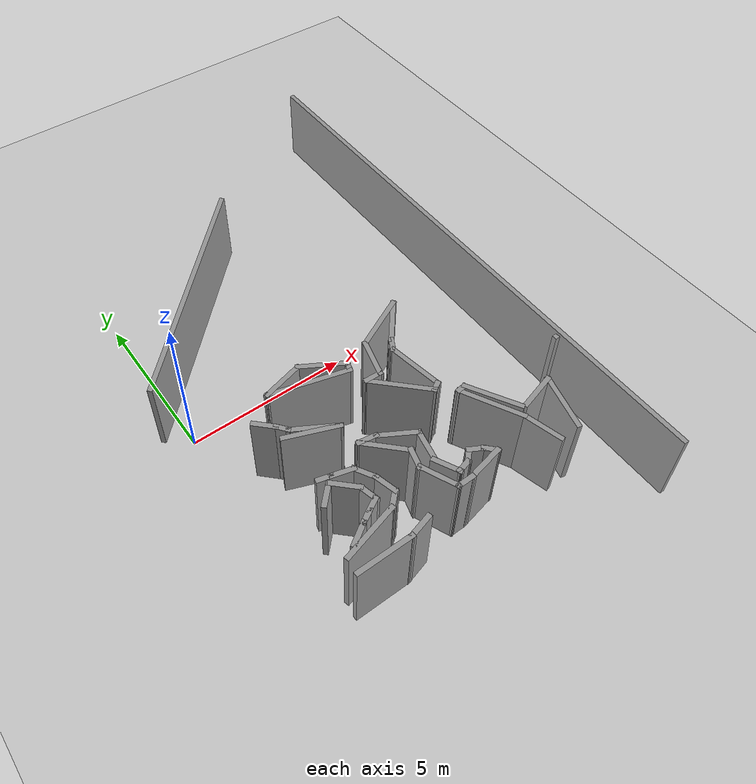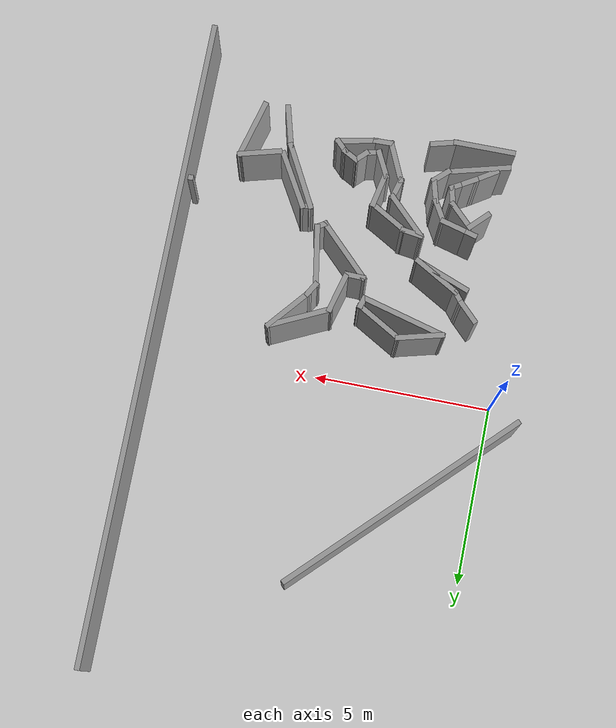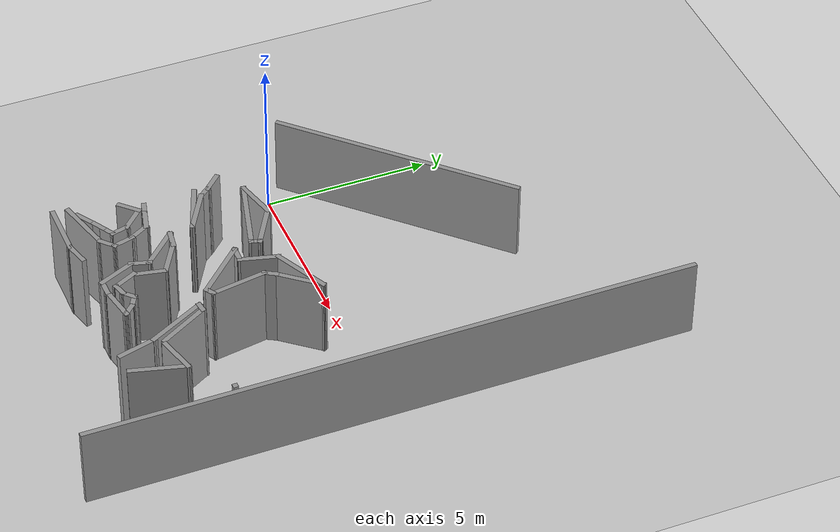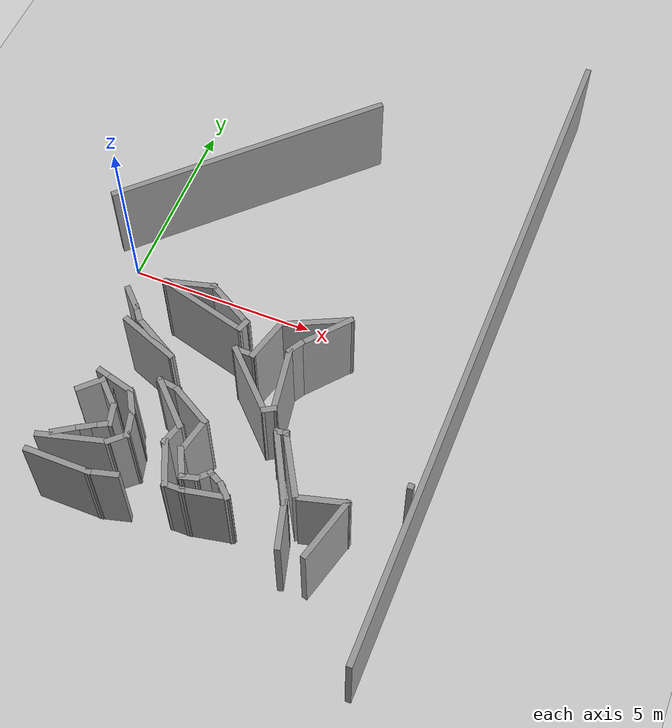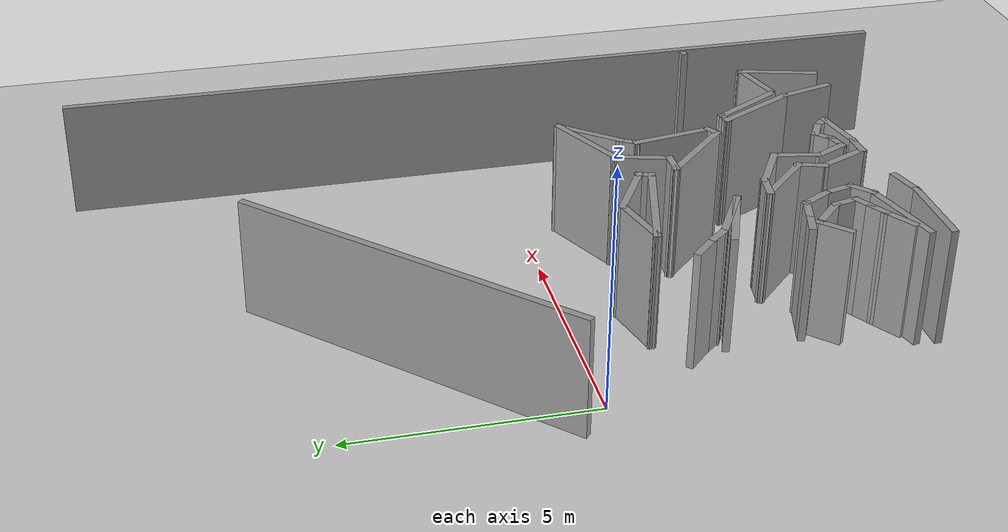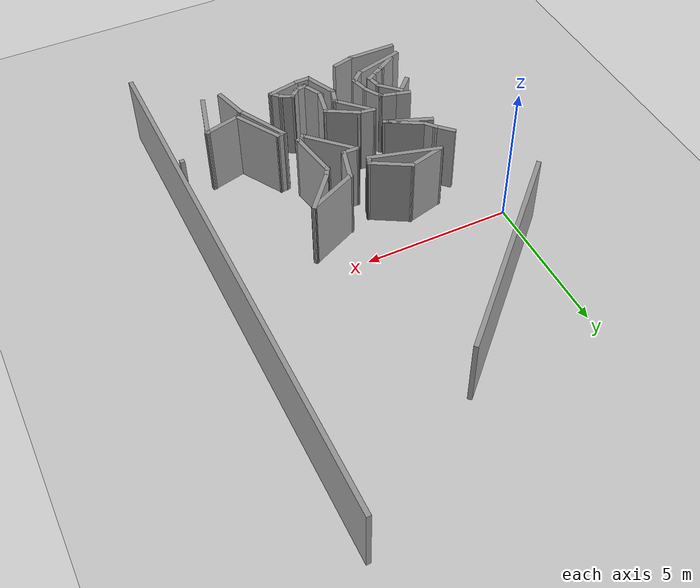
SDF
<sdf version="1.7">
 <world name="default">
  <model name="ground_plane">
   <static>1</static>
   <link name="link">
    <collision name="collision">
     <geometry><plane><normal>0 0 1</normal><size>100 100</size></plane></geometry>
     <surface>
      <contact><collide_bitmask>65535</collide_bitmask></contact>
      <friction><ode><mu>100</mu><mu2>50</mu2></ode></friction>
     </surface>
    </collision>
    <visual name="visual">
     <cast_shadows>0</cast_shadows>
     <geometry><plane><normal>0 0 1</normal><size>100 100</size></plane></geometry>
     <material>
      <script><uri>file://media/materials/scripts/gazebo.material</uri><name>Gazebo/Grey</name></script>
     </material>
    </visual>
   </link>
  </model>
  <model name="Untitled">
   <pose>-0.048209 -0.510974 0 0 -0 0</pose>
   <link name="Wall_130">
    <collision name="Wall_130_Collision">
     <geometry><box><size>0.649842 0.15 2.5</size></box></geometry>
     <pose>0 0 1.25 0 -0 0</pose>
    </collision>
    <visual name="Wall_130_Visual">
     <pose>0 0 1.25 0 -0 0</pose>
     <geometry><box><size>0.649842 0.15 2.5</size></box></geometry>
     <material>
      <script><uri>file://media/materials/scripts/gazebo.material</uri><name>Gazebo/Grey</name></script>
      <ambient>1 1 1 1</ambient>
     </material>
     <meta><layer>0</layer></meta>
    </visual>
    <pose>3.14663 -3.54986 0 0 -0 2.99528</pose>
   </link>
   <link name="Wall_131">
    <collision name="Wall_131_Collision">
     <geometry><box><size>1.5 0.15 2.5</size></box></geometry>
     <pose>0 0 1.25 0 -0 0</pose>
    </collision>
    <visual name="Wall_131_Visual">
     <pose>0 0 1.25 0 -0 0</pose>
     <geometry><box><size>1.5 0.15 2.5</size></box></geometry>
     <material>
      <script><uri>file://media/materials/scripts/gazebo.material</uri><name>Gazebo/Grey</name></script>
      <ambient>1 1 1 1</ambient>
     </material>
     <meta><layer>0</layer></meta>
    </visual>
    <pose>3.37668 -3.99072 0 0 -0 -0.785398</pose>
   </link>
   <link name="Wall_132">
    <collision name="Wall_132_Collision">
     <geometry><box><size>0.68894 0.15 2.5</size></box></geometry>
     <pose>0 0 1.25 0 -0 0</pose>
    </collision>
    <visual name="Wall_132_Visual">
     <pose>0 0 1.25 0 -0 0</pose>
     <geometry><box><size>0.68894 0.15 2.5</size></box></geometry>
     <material>
      <script><uri>file://media/materials/scripts/gazebo.material</uri><name>Gazebo/Grey</name></script>
      <ambient>1 1 1 1</ambient>
     </material>
     <meta><layer>0</layer></meta>
    </visual>
    <pose>3.7809 -4.71434 0 0 -0 -1.84544</pose>
   </link>
   <link name="Wall_133">
    <collision name="Wall_133_Collision">
     <geometry><box><size>1.23729 0.15 2.5</size></box></geometry>
     <pose>0 0 1.25 0 -0 0</pose>
    </collision>
    <visual name="Wall_133_Visual">
     <pose>0 0 1.25 0 -0 0</pose>
     <geometry><box><size>1.23729 0.15 2.5</size></box></geometry>
     <material>
      <script><uri>file://media/materials/scripts/gazebo.material</uri><name>Gazebo/Grey</name></script>
      <ambient>1 1 1 1</ambient>
     </material>
     <meta><layer>0</layer></meta>
    </visual>
    <pose>3.94368 -5.46959 0 0 -0 -1.14848</pose>
   </link>
   <link name="Wall_134">
    <collision name="Wall_134_Collision">
     <geometry><box><size>0.589498 0.15 2.5</size></box></geometry>
     <pose>0 0 1.25 0 -0 0</pose>
    </collision>
    <visual name="Wall_134_Visual">
     <pose>0 0 1.25 0 -0 0</pose>
     <geometry><box><size>0.589498 0.15 2.5</size></box></geometry>
     <material>
      <script><uri>file://media/materials/scripts/gazebo.material</uri><name>Gazebo/Grey</name></script>
      <ambient>1 1 1 1</ambient>
     </material>
     <meta><layer>0</layer></meta>
    </visual>
    <pose>4.38622 -5.96132 0 0 -0 0.018896</pose>
   </link>
   <link name="Wall_135">
    <collision name="Wall_135_Collision">
     <geometry><box><size>1.19695 0.15 2.5</size></box></geometry>
     <pose>0 0 1.25 0 -0 0</pose>
    </collision>
    <visual name="Wall_135_Visual">
     <pose>0 0 1.25 0 -0 0</pose>
     <geometry><box><size>1.19695 0.15 2.5</size></box></geometry>
     <material>
      <script><uri>file://media/materials/scripts/gazebo.material</uri><name>Gazebo/Grey</name></script>
      <ambient>1 1 1 1</ambient>
     </material>
     <meta><layer>0</layer></meta>
    </visual>
    <pose>5.11922 -5.85438 0 0 -0 0.197635</pose>
   </link>
   <link name="Wall_136">
    <collision name="Wall_136_Collision">
     <geometry><box><size>0.5 0.15 2.5</size></box></geometry>
     <pose>0 0 1.25 0 -0 0</pose>
    </collision>
    <visual name="Wall_136_Visual">
     <pose>0 0 1.25 0 -0 0</pose>
     <geometry><box><size>0.5 0.15 2.5</size></box></geometry>
     <material>
      <script><uri>file://media/materials/scripts/gazebo.material</uri><name>Gazebo/Grey</name></script>
      <ambient>1 1 1 1</ambient>
     </material>
     <meta><layer>0</layer></meta>
    </visual>
    <pose>5.50876 -5.62785 0 0 -0 2.35619</pose>
   </link>
   <link name="Wall_138">
    <collision name="Wall_138_Collision">
     <geometry><box><size>0.15 0.15 2.5</size></box></geometry>
     <pose>0 0 1.25 0 -0 0</pose>
    </collision>
    <visual name="Wall_138_Visual">
     <pose>0 0 1.25 0 -0 0</pose>
     <geometry><box><size>0.15 0.15 2.5</size></box></geometry>
     <material>
      <script><uri>file://media/materials/scripts/gazebo.material</uri><name>Gazebo/Grey</name></script>
      <ambient>1 1 1 1</ambient>
     </material>
     <meta><layer>0</layer></meta>
    </visual>
    <pose>4.45791 -5.65408 0 0 -0 0</pose>
   </link>
   <link name="Wall_150">
    <collision name="Wall_150_Collision">
     <geometry><box><size>1.68602 0.15 2.5</size></box></geometry>
     <pose>0 0 1.25 0 -0 0</pose>
    </collision>
    <visual name="Wall_150_Visual">
     <pose>0 0 1.25 0 -0 0</pose>
     <geometry><box><size>1.68602 0.15 2.5</size></box></geometry>
     <material>
      <script><uri>file://media/materials/scripts/gazebo.material</uri><name>Gazebo/Grey</name></script>
      <ambient>1 1 1 1</ambient>
     </material>
     <meta><layer>0</layer></meta>
    </visual>
    <pose>2.11857 -2.53024 0 0 -0 2.77294</pose>
   </link>
   <link name="Wall_152">
    <collision name="Wall_152_Collision">
     <geometry><box><size>1.5 0.15 2.5</size></box></geometry>
     <pose>0 0 1.25 0 -0 0</pose>
    </collision>
    <visual name="Wall_152_Visual">
     <pose>0 0 1.25 0 -0 0</pose>
     <geometry><box><size>1.5 0.15 2.5</size></box></geometry>
     <material>
      <script><uri>file://media/materials/scripts/gazebo.material</uri><name>Gazebo/Grey</name></script>
      <ambient>1 1 1 1</ambient>
     </material>
     <meta><layer>0</layer></meta>
    </visual>
    <pose>2.25041 -2.4695 0 0 -0 -0.523599</pose>
   </link>
   <link name="Wall_174">
    <collision name="Wall_174_Collision">
     <geometry><box><size>0.5 0.15 2.5</size></box></geometry>
     <pose>0 0 1.25 0 -0 0</pose>
    </collision>
    <visual name="Wall_174_Visual">
     <pose>0 0 1.25 0 -0 0</pose>
     <geometry><box><size>0.5 0.15 2.5</size></box></geometry>
     <material>
      <script><uri>file://media/materials/scripts/gazebo.material</uri><name>Gazebo/Grey</name></script>
      <ambient>1 1 1 1</ambient>
     </material>
     <meta><layer>0</layer></meta>
    </visual>
    <pose>1.82667 -5.29631 0 0 -0 -2.61799</pose>
   </link>
   <link name="Wall_178">
    <collision name="Wall_178_Collision">
     <geometry><box><size>0.5 0.15 2.5</size></box></geometry>
     <pose>0 0 1.25 0 -0 0</pose>
    </collision>
    <visual name="Wall_178_Visual">
     <pose>0 0 1.25 0 -0 0</pose>
     <geometry><box><size>0.5 0.15 2.5</size></box></geometry>
     <material>
      <script><uri>file://media/materials/scripts/gazebo.material</uri><name>Gazebo/Grey</name></script>
      <ambient>1 1 1 1</ambient>
     </material>
     <meta><layer>0</layer></meta>
    </visual>
    <pose>2.12978 -5.12131 0 0 -0 0.523599</pose>
   </link>
   <link name="Wall_179">
    <collision name="Wall_179_Collision">
     <geometry><box><size>0.626539 0.15 2.5</size></box></geometry>
     <pose>0 0 1.25 0 -0 0</pose>
    </collision>
    <visual name="Wall_179_Visual">
     <pose>0 0 1.25 0 -0 0</pose>
     <geometry><box><size>0.626539 0.15 2.5</size></box></geometry>
     <material>
      <script><uri>file://media/materials/scripts/gazebo.material</uri><name>Gazebo/Grey</name></script>
      <ambient>1 1 1 1</ambient>
     </material>
     <meta><layer>0</layer></meta>
    </visual>
    <pose>2.23629 -4.80273 0 0 -0 1.81704</pose>
   </link>
   <link name="Wall_180">
    <collision name="Wall_180_Collision">
     <geometry><box><size>0.946243 0.15 2.5</size></box></geometry>
     <pose>0 0 1.25 0 -0 0</pose>
    </collision>
    <visual name="Wall_180_Visual">
     <pose>0 0 1.25 0 -0 0</pose>
     <geometry><box><size>0.946243 0.15 2.5</size></box></geometry>
     <material>
      <script><uri>file://media/materials/scripts/gazebo.material</uri><name>Gazebo/Grey</name></script>
      <ambient>1 1 1 1</ambient>
     </material>
     <meta><layer>0</layer></meta>
    </visual>
    <pose>1.89423 -4.29263 0 0 -0 2.36501</pose>
   </link>
   <link name="Wall_182">
    <collision name="Wall_182_Collision">
     <geometry><box><size>0.773513 0.15 2.5</size></box></geometry>
     <pose>0 0 1.25 0 -0 0</pose>
    </collision>
    <visual name="Wall_182_Visual">
     <pose>0 0 1.25 0 -0 0</pose>
     <geometry><box><size>0.773513 0.15 2.5</size></box></geometry>
     <material>
      <script><uri>file://media/materials/scripts/gazebo.material</uri><name>Gazebo/Grey</name></script>
      <ambient>1 1 1 1</ambient>
     </material>
     <meta><layer>0</layer></meta>
    </visual>
    <pose>1.41236 -5.5516 0 0 -0 -2.5733</pose>
   </link>
   <link name="Wall_184">
    <collision name="Wall_184_Collision">
     <geometry><box><size>1.82264 0.15 2.5</size></box></geometry>
     <pose>0 0 1.25 0 -0 0</pose>
    </collision>
    <visual name="Wall_184_Visual">
     <pose>0 0 1.25 0 -0 0</pose>
     <geometry><box><size>1.82264 0.15 2.5</size></box></geometry>
     <material>
      <script><uri>file://media/materials/scripts/gazebo.material</uri><name>Gazebo/Grey</name></script>
      <ambient>1 1 1 1</ambient>
     </material>
     <meta><layer>0</layer></meta>
    </visual>
    <pose>1.65502 -5.68055 0 0 -0 0.258555</pose>
   </link>
   <link name="Wall_185">
    <collision name="Wall_185_Collision">
     <geometry><box><size>0.624417 0.15 2.5</size></box></geometry>
     <pose>0 0 1.25 0 -0 0</pose>
    </collision>
    <visual name="Wall_185_Visual">
     <pose>0 0 1.25 0 -0 0</pose>
     <geometry><box><size>0.624417 0.15 2.5</size></box></geometry>
     <material>
      <script><uri>file://media/materials/scripts/gazebo.material</uri><name>Gazebo/Grey</name></script>
      <ambient>1 1 1 1</ambient>
     </material>
     <meta><layer>0</layer></meta>
    </visual>
    <pose>2.63782 -5.3058 0 0 -0 0.745572</pose>
   </link>
   <link name="Wall_205">
    <collision name="Wall_205_Collision">
     <geometry><box><size>2.5 0.15 2.5</size></box></geometry>
     <pose>0 0 1.25 0 -0 0</pose>
    </collision>
    <visual name="Wall_205_Visual">
     <pose>0 0 1.25 0 -0 0</pose>
     <geometry><box><size>2.5 0.15 2.5</size></box></geometry>
     <material>
      <script><uri>file://media/materials/scripts/gazebo.material</uri><name>Gazebo/Grey</name></script>
      <ambient>1 1 1 1</ambient>
     </material>
     <meta><layer>0</layer></meta>
    </visual>
    <pose>2.953 -1.18417 0 0 -0 -0.261799</pose>
   </link>
   <link name="Wall_208">
    <collision name="Wall_208_Collision">
     <geometry><box><size>0.386434 0.15 2.5</size></box></geometry>
     <pose>0 0 1.25 0 -0 0</pose>
    </collision>
    <visual name="Wall_208_Visual">
     <pose>0 0 1.25 0 -0 0</pose>
     <geometry><box><size>0.386434 0.15 2.5</size></box></geometry>
     <material>
      <script><uri>file://media/materials/scripts/gazebo.material</uri><name>Gazebo/Grey</name></script>
      <ambient>1 1 1 1</ambient>
     </material>
     <meta><layer>0</layer></meta>
    </visual>
    <pose>5.63574 -3.28932 0 0 -0 0.550497</pose>
   </link>
   <link name="Wall_210">
    <collision name="Wall_210_Collision">
     <geometry><box><size>1.5 0.15 2.5</size></box></geometry>
     <pose>0 0 1.25 0 -0 0</pose>
    </collision>
    <visual name="Wall_210_Visual">
     <pose>0 0 1.25 0 -0 0</pose>
     <geometry><box><size>1.5 0.15 2.5</size></box></geometry>
     <material>
      <script><uri>file://media/materials/scripts/gazebo.material</uri><name>Gazebo/Grey</name></script>
      <ambient>1 1 1 1</ambient>
     </material>
     <meta><layer>0</layer></meta>
    </visual>
    <pose>3.57741 -0.912828 0 0 -0 2.61799</pose>
   </link>
   <link name="Wall_211">
    <collision name="Wall_211_Collision">
     <geometry><box><size>1.36368 0.15 2.5</size></box></geometry>
     <pose>0 0 1.25 0 -0 0</pose>
    </collision>
    <visual name="Wall_211_Visual">
     <pose>0 0 1.25 0 -0 0</pose>
     <geometry><box><size>1.36368 0.15 2.5</size></box></geometry>
     <material>
      <script><uri>file://media/materials/scripts/gazebo.material</uri><name>Gazebo/Grey</name></script>
      <ambient>1 1 1 1</ambient>
     </material>
     <meta><layer>0</layer></meta>
    </visual>
    <pose>2.40544 -0.727693 0 0 -0 -2.8878</pose>
   </link>
   <link name="Wall_213">
    <collision name="Wall_213_Collision">
     <geometry><box><size>0.861837 0.15 2.5</size></box></geometry>
     <pose>0 0 1.25 0 -0 0</pose>
    </collision>
    <visual name="Wall_213_Visual">
     <pose>0 0 1.25 0 -0 0</pose>
     <geometry><box><size>0.861837 0.15 2.5</size></box></geometry>
     <material>
      <script><uri>file://media/materials/scripts/gazebo.material</uri><name>Gazebo/Grey</name></script>
      <ambient>1 1 1 1</ambient>
     </material>
     <meta><layer>0</layer></meta>
    </visual>
    <pose>4.29753 -5.33635 0 0 -0 -1.10334</pose>
   </link>
   <link name="Wall_215">
    <collision name="Wall_215_Collision">
     <geometry><box><size>0.15 0.15 2.5</size></box></geometry>
     <pose>0 0 1.25 0 -0 0</pose>
    </collision>
    <visual name="Wall_215_Visual">
     <pose>0 0 1.25 0 -0 0</pose>
     <geometry><box><size>0.15 0.15 2.5</size></box></geometry>
     <material>
      <script><uri>file://media/materials/scripts/gazebo.material</uri><name>Gazebo/Grey</name></script>
      <ambient>1 1 1 1</ambient>
     </material>
     <meta><layer>0</layer></meta>
    </visual>
    <pose>4.16197 -1.25033 0 0 -0 0</pose>
   </link>
   <link name="Wall_216">
    <collision name="Wall_216_Collision">
     <geometry><box><size>0.399197 0.15 2.5</size></box></geometry>
     <pose>0 0 1.25 0 -0 0</pose>
    </collision>
    <visual name="Wall_216_Visual">
     <pose>0 0 1.25 0 -0 0</pose>
     <geometry><box><size>0.399197 0.15 2.5</size></box></geometry>
     <material>
      <script><uri>file://media/materials/scripts/gazebo.material</uri><name>Gazebo/Grey</name></script>
      <ambient>1 1 1 1</ambient>
     </material>
     <meta><layer>0</layer></meta>
    </visual>
    <pose>4.12497 -1.3693 0 0 -0 -1.87234</pose>
   </link>
   <link name="Wall_218">
    <collision name="Wall_218_Collision">
     <geometry><box><size>1.25 0.15 2.5</size></box></geometry>
     <pose>0 0 1.25 0 -0 0</pose>
    </collision>
    <visual name="Wall_218_Visual">
     <pose>0 0 1.25 0 -0 0</pose>
     <geometry><box><size>1.25 0.15 2.5</size></box></geometry>
     <material>
      <script><uri>file://media/materials/scripts/gazebo.material</uri><name>Gazebo/Grey</name></script>
      <ambient>1 1 1 1</ambient>
     </material>
     <meta><layer>0</layer></meta>
    </visual>
    <pose>4.83136 -1.52356 0 0 -0 1.309</pose>
   </link>
   <link name="Wall_219">
    <collision name="Wall_219_Collision">
     <geometry><box><size>1.87917 0.15 2.5</size></box></geometry>
     <pose>0 0 1.25 0 -0 0</pose>
    </collision>
    <visual name="Wall_219_Visual">
     <pose>0 0 1.25 0 -0 0</pose>
     <geometry><box><size>1.87917 0.15 2.5</size></box></geometry>
     <material>
      <script><uri>file://media/materials/scripts/gazebo.material</uri><name>Gazebo/Grey</name></script>
      <ambient>1 1 1 1</ambient>
     </material>
     <meta><layer>0</layer></meta>
    </visual>
    <pose>5.75342 -0.618746 0 0 -0 0.446784</pose>
   </link>
   <link name="Wall_220">
    <collision name="Wall_220_Collision">
     <geometry><box><size>1.53409 0.15 2.5</size></box></geometry>
     <pose>0 0 1.25 0 -0 0</pose>
    </collision>
    <visual name="Wall_220_Visual">
     <pose>0 0 1.25 0 -0 0</pose>
     <geometry><box><size>1.53409 0.15 2.5</size></box></geometry>
     <material>
      <script><uri>file://media/materials/scripts/gazebo.material</uri><name>Gazebo/Grey</name></script>
      <ambient>1 1 1 1</ambient>
     </material>
     <meta><layer>0</layer></meta>
    </visual>
    <pose>6.09027 -0.776968 0 0 -0 -2.26523</pose>
   </link>
   <link name="Wall_221">
    <collision name="Wall_221_Collision">
     <geometry><box><size>0.5 0.15 2.5</size></box></geometry>
     <pose>0 0 1.25 0 -0 0</pose>
    </collision>
    <visual name="Wall_221_Visual">
     <pose>0 0 1.25 0 -0 0</pose>
     <geometry><box><size>0.5 0.15 2.5</size></box></geometry>
     <material>
      <script><uri>file://media/materials/scripts/gazebo.material</uri><name>Gazebo/Grey</name></script>
      <ambient>1 1 1 1</ambient>
     </material>
     <meta><layer>0</layer></meta>
    </visual>
    <pose>5.5599 -1.4603 0 0 -0 -2.0944</pose>
   </link>
   <link name="Wall_222">
    <collision name="Wall_222_Collision">
     <geometry><box><size>1.78706 0.15 2.5</size></box></geometry>
     <pose>0 0 1.25 0 -0 0</pose>
    </collision>
    <visual name="Wall_222_Visual">
     <pose>0 0 1.25 0 -0 0</pose>
     <geometry><box><size>1.78706 0.15 2.5</size></box></geometry>
     <material>
      <script><uri>file://media/materials/scripts/gazebo.material</uri><name>Gazebo/Grey</name></script>
      <ambient>1 1 1 1</ambient>
     </material>
     <meta><layer>0</layer></meta>
    </visual>
    <pose>5.60445 -2.41967 0 0 -0 -1.40877</pose>
   </link>
   <link name="Wall_224">
    <collision name="Wall_224_Collision">
     <geometry><box><size>1.99262 0.15 2.5</size></box></geometry>
     <pose>0 0 1.25 0 -0 0</pose>
    </collision>
    <visual name="Wall_224_Visual">
     <pose>0 0 1.25 0 -0 0</pose>
     <geometry><box><size>1.99262 0.15 2.5</size></box></geometry>
     <material>
      <script><uri>file://media/materials/scripts/gazebo.material</uri><name>Gazebo/Grey</name></script>
      <ambient>1 1 1 1</ambient>
     </material>
     <meta><layer>0</layer></meta>
    </visual>
    <pose>6.47196 -4.57026 0 0 -0 -1.08232</pose>
   </link>
   <link name="Wall_225">
    <collision name="Wall_225_Collision">
     <geometry><box><size>1.25 0.15 2.5</size></box></geometry>
     <pose>0 0 1.25 0 -0 0</pose>
    </collision>
    <visual name="Wall_225_Visual">
     <pose>0 0 1.25 0 -0 0</pose>
     <geometry><box><size>1.25 0.15 2.5</size></box></geometry>
     <material>
      <script><uri>file://media/materials/scripts/gazebo.material</uri><name>Gazebo/Grey</name></script>
      <ambient>1 1 1 1</ambient>
     </material>
     <meta><layer>0</layer></meta>
    </visual>
    <pose>7.04666 -5.91508 0 0 -0 -1.309</pose>
   </link>
   <link name="Wall_229">
    <collision name="Wall_229_Collision">
     <geometry><box><size>1.75 0.15 2.5</size></box></geometry>
     <pose>0 0 1.25 0 -0 0</pose>
    </collision>
    <visual name="Wall_229_Visual">
     <pose>0 0 1.25 0 -0 0</pose>
     <geometry><box><size>1.75 0.15 2.5</size></box></geometry>
     <material>
      <script><uri>file://media/materials/scripts/gazebo.material</uri><name>Gazebo/Grey</name></script>
      <ambient>1 1 1 1</ambient>
     </material>
     <meta><layer>0</layer></meta>
    </visual>
    <pose>6.6596 -4.42056 0 0 -0 2.0944</pose>
   </link>
   <link name="Wall_230">
    <collision name="Wall_230_Collision">
     <geometry><box><size>0.371895 0.15 2.5</size></box></geometry>
     <pose>0 0 1.25 0 -0 0</pose>
    </collision>
    <visual name="Wall_230_Visual">
     <pose>0 0 1.25 0 -0 0</pose>
     <geometry><box><size>0.371895 0.15 2.5</size></box></geometry>
     <material>
      <script><uri>file://media/materials/scripts/gazebo.material</uri><name>Gazebo/Grey</name></script>
      <ambient>1 1 1 1</ambient>
     </material>
     <meta><layer>0</layer></meta>
    </visual>
    <pose>6.1496 -3.74222 0 0 -0 -3.01069</pose>
   </link>
   <link name="Wall_232">
    <collision name="Wall_232_Collision">
     <geometry><box><size>1.25 0.15 2.5</size></box></geometry>
     <pose>0 0 1.25 0 -0 0</pose>
    </collision>
    <visual name="Wall_232_Visual">
     <pose>0 0 1.25 0 -0 0</pose>
     <geometry><box><size>1.25 0.15 2.5</size></box></geometry>
     <material>
      <script><uri>file://media/materials/scripts/gazebo.material</uri><name>Gazebo/Grey</name></script>
      <ambient>1 1 1 1</ambient>
     </material>
     <meta><layer>0</layer></meta>
    </visual>
    <pose>7.71579 -5.00712 0 0 -0 0.261799</pose>
   </link>
   <link name="Wall_233">
    <collision name="Wall_233_Collision">
     <geometry><box><size>1.75 0.15 2.5</size></box></geometry>
     <pose>0 0 1.25 0 -0 0</pose>
    </collision>
    <visual name="Wall_233_Visual">
     <pose>0 0 1.25 0 -0 0</pose>
     <geometry><box><size>1.75 0.15 2.5</size></box></geometry>
     <material>
      <script><uri>file://media/materials/scripts/gazebo.material</uri><name>Gazebo/Grey</name></script>
      <ambient>1 1 1 1</ambient>
     </material>
     <meta><layer>0</layer></meta>
    </visual>
    <pose>8.03999 -5.63751 0 0 -0 -1.8326</pose>
   </link>
   <link name="Wall_243">
    <collision name="Wall_243_Collision">
     <geometry><box><size>0.599276 0.15 2.5</size></box></geometry>
     <pose>0 0 1.25 0 -0 0</pose>
    </collision>
    <visual name="Wall_243_Visual">
     <pose>0 0 1.25 0 -0 0</pose>
     <geometry><box><size>0.599276 0.15 2.5</size></box></geometry>
     <material>
      <script><uri>file://media/materials/scripts/gazebo.material</uri><name>Gazebo/Grey</name></script>
      <ambient>1 1 1 1</ambient>
     </material>
     <meta><layer>0</layer></meta>
    </visual>
    <pose>4.46445 -2.04892 0 0 -0 3.1153</pose>
   </link>
   <link name="Wall_244">
    <collision name="Wall_244_Collision">
     <geometry><box><size>2 0.15 2.5</size></box></geometry>
     <pose>0 0 1.25 0 -0 0</pose>
    </collision>
    <visual name="Wall_244_Visual">
     <pose>0 0 1.25 0 -0 0</pose>
     <geometry><box><size>2 0.15 2.5</size></box></geometry>
     <material>
      <script><uri>file://media/materials/scripts/gazebo.material</uri><name>Gazebo/Grey</name></script>
      <ambient>1 1 1 1</ambient>
     </material>
     <meta><layer>0</layer></meta>
    </visual>
    <pose>4.88092 -2.69708 0 0 -0 -0.785398</pose>
   </link>
   <link name="Wall_252">
    <collision name="Wall_252_Collision">
     <geometry><box><size>1.75 0.15 2.5</size></box></geometry>
     <pose>0 0 1.25 0 -0 0</pose>
    </collision>
    <visual name="Wall_252_Visual">
     <pose>0 0 1.25 0 -0 0</pose>
     <geometry><box><size>1.75 0.15 2.5</size></box></geometry>
     <material>
      <script><uri>file://media/materials/scripts/gazebo.material</uri><name>Gazebo/Grey</name></script>
      <ambient>1 1 1 1</ambient>
     </material>
     <meta><layer>0</layer></meta>
    </visual>
    <pose>1.59619 -6.33654 0 0 -0 0</pose>
   </link>
   <link name="Wall_253">
    <collision name="Wall_253_Collision">
     <geometry><box><size>0.808728 0.15 2.5</size></box></geometry>
     <pose>0 0 1.25 0 -0 0</pose>
    </collision>
    <visual name="Wall_253_Visual">
     <pose>0 0 1.25 0 -0 0</pose>
     <geometry><box><size>0.808728 0.15 2.5</size></box></geometry>
     <material>
      <script><uri>file://media/materials/scripts/gazebo.material</uri><name>Gazebo/Grey</name></script>
      <ambient>1 1 1 1</ambient>
     </material>
     <meta><layer>0</layer></meta>
    </visual>
    <pose>2.71472 -6.25279 0 0 -0 0.257104</pose>
   </link>
   <link name="Wall_256">
    <collision name="Wall_256_Collision">
     <geometry><box><size>0.5 0.15 2.5</size></box></geometry>
     <pose>0 0 1.25 0 -0 0</pose>
    </collision>
    <visual name="Wall_256_Visual">
     <pose>0 0 1.25 0 -0 0</pose>
     <geometry><box><size>0.5 0.15 2.5</size></box></geometry>
     <material>
      <script><uri>file://media/materials/scripts/gazebo.material</uri><name>Gazebo/Grey</name></script>
      <ambient>1 1 1 1</ambient>
     </material>
     <meta><layer>0</layer></meta>
    </visual>
    <pose>4.62695 -5.60879 0 0 -0 0.261799</pose>
   </link>
   <link name="Wall_257">
    <collision name="Wall_257_Collision">
     <geometry><box><size>0.5 0.15 2.5</size></box></geometry>
     <pose>0 0 1.25 0 -0 0</pose>
    </collision>
    <visual name="Wall_257_Visual">
     <pose>0 0 1.25 0 -0 0</pose>
     <geometry><box><size>0.5 0.15 2.5</size></box></geometry>
     <material>
      <script><uri>file://media/materials/scripts/gazebo.material</uri><name>Gazebo/Grey</name></script>
      <ambient>1 1 1 1</ambient>
     </material>
     <meta><layer>0</layer></meta>
    </visual>
    <pose>4.91973 -5.43975 0 0 -0 0.785398</pose>
   </link>
   <link name="Wall_258">
    <collision name="Wall_258_Collision">
     <geometry><box><size>0.539913 0.15 2.5</size></box></geometry>
     <pose>0 0 1.25 0 -0 0</pose>
    </collision>
    <visual name="Wall_258_Visual">
     <pose>0 0 1.25 0 -0 0</pose>
     <geometry><box><size>0.539913 0.15 2.5</size></box></geometry>
     <material>
      <script><uri>file://media/materials/scripts/gazebo.material</uri><name>Gazebo/Grey</name></script>
      <ambient>1 1 1 1</ambient>
     </material>
     <meta><layer>0</layer></meta>
    </visual>
    <pose>5.21425 -5.41006 0 0 -0 -0.503411</pose>
   </link>
   <link name="Wall_267">
    <collision name="Wall_267_Collision">
     <geometry><box><size>7.75 0.15 2.5</size></box></geometry>
     <pose>0 0 1.25 0 -0 0</pose>
    </collision>
    <visual name="Wall_267_Visual">
     <pose>0 0 1.25 0 -0 0</pose>
     <geometry><box><size>7.75 0.15 2.5</size></box></geometry>
     <material>
      <script><uri>file://media/materials/scripts/gazebo.material</uri><name>Gazebo/Grey</name></script>
      <ambient>1 1 1 1</ambient>
     </material>
     <meta><layer>0</layer></meta>
    </visual>
    <pose>2.0723 3.80178 0 0 -0 0.785398</pose>
   </link>
   <link name="Wall_35">
    <collision name="Wall_35_Collision">
     <geometry><box><size>0.486954 0.15 2.5</size></box></geometry>
     <pose>0 0 1.25 0 -0 0</pose>
    </collision>
    <visual name="Wall_35_Visual">
     <pose>0 0 1.25 0 -0 0</pose>
     <geometry><box><size>0.486954 0.15 2.5</size></box></geometry>
     <material>
      <script><uri>file://media/materials/scripts/gazebo.material</uri><name>Gazebo/Grey</name></script>
      <ambient>1 1 1 1</ambient>
     </material>
     <meta><layer>0</layer></meta>
    </visual>
    <pose>1.55863 -1.98498 0 0 -0 -0.881036</pose>
   </link>
   <link name="Wall_4">
    <collision name="Wall_4_Collision">
     <geometry><box><size>0.15 0.15 2.5</size></box></geometry>
     <pose>0 0 1.25 0 -0 0</pose>
    </collision>
    <visual name="Wall_4_Visual">
     <pose>0 0 1.25 0 -0 0</pose>
     <geometry><box><size>0.15 0.15 2.5</size></box></geometry>
     <material>
      <script><uri>file://media/materials/scripts/gazebo.material</uri><name>Gazebo/Grey</name></script>
      <ambient>1 1 1 1</ambient>
     </material>
     <meta><layer>0</layer></meta>
    </visual>
    <pose>9.45314 -3.93777 0 0 -0 0</pose>
   </link>
   <link name="Wall_40">
    <collision name="Wall_40_Collision">
     <geometry><box><size>1.25 0.15 2.5</size></box></geometry>
     <pose>0 0 1.25 0 -0 0</pose>
    </collision>
    <visual name="Wall_40_Visual">
     <pose>0 0 1.25 0 -0 0</pose>
     <geometry><box><size>1.25 0.15 2.5</size></box></geometry>
     <material>
      <script><uri>file://media/materials/scripts/gazebo.material</uri><name>Gazebo/Grey</name></script>
      <ambient>1 1 1 1</ambient>
     </material>
     <meta><layer>0</layer></meta>
    </visual>
    <pose>3.8702 -3.87433 0 0 -0 -0.523599</pose>
   </link>
   <link name="Wall_41">
    <collision name="Wall_41_Collision">
     <geometry><box><size>1.01978 0.15 2.5</size></box></geometry>
     <pose>0 0 1.25 0 -0 0</pose>
    </collision>
    <visual name="Wall_41_Visual">
     <pose>0 0 1.25 0 -0 0</pose>
     <geometry><box><size>1.01978 0.15 2.5</size></box></geometry>
     <material>
      <script><uri>file://media/materials/scripts/gazebo.material</uri><name>Gazebo/Grey</name></script>
      <ambient>1 1 1 1</ambient>
     </material>
     <meta><layer>0</layer></meta>
    </visual>
    <pose>4.25908 -4.57535 0 0 -0 -1.77322</pose>
   </link>
   <link name="Wall_43">
    <collision name="Wall_43_Collision">
     <geometry><box><size>1.19695 0.15 2.5</size></box></geometry>
     <pose>0 0 1.25 0 -0 0</pose>
    </collision>
    <visual name="Wall_43_Visual">
     <pose>0 0 1.25 0 -0 0</pose>
     <geometry><box><size>1.19695 0.15 2.5</size></box></geometry>
     <material>
      <script><uri>file://media/materials/scripts/gazebo.material</uri><name>Gazebo/Grey</name></script>
      <ambient>1 1 1 1</ambient>
     </material>
     <meta><layer>0</layer></meta>
    </visual>
    <pose>5.11922 -5.85438 0 0 -0 0.197635</pose>
   </link>
   <link name="Wall_45">
    <collision name="Wall_45_Collision">
     <geometry><box><size>0.772312 0.15 2.5</size></box></geometry>
     <pose>0 0 1.25 0 -0 0</pose>
    </collision>
    <visual name="Wall_45_Visual">
     <pose>0 0 1.25 0 -0 0</pose>
     <geometry><box><size>0.772312 0.15 2.5</size></box></geometry>
     <material>
      <script><uri>file://media/materials/scripts/gazebo.material</uri><name>Gazebo/Grey</name></script>
      <ambient>1 1 1 1</ambient>
     </material>
     <meta><layer>0</layer></meta>
    </visual>
    <pose>1.39022 -4.23363 0 0 -0 -2.35619</pose>
   </link>
   <link name="Wall_76">
    <collision name="Wall_76_Collision">
     <geometry><box><size>0.5 0.15 2.5</size></box></geometry>
     <pose>0 0 1.25 0 -0 0</pose>
    </collision>
    <visual name="Wall_76_Visual">
     <pose>0 0 1.25 0 -0 0</pose>
     <geometry><box><size>0.5 0.15 2.5</size></box></geometry>
     <material>
      <script><uri>file://media/materials/scripts/gazebo.material</uri><name>Gazebo/Grey</name></script>
      <ambient>1 1 1 1</ambient>
     </material>
     <meta><layer>0</layer></meta>
    </visual>
    <pose>1.60821 -3.84512 0 0 -0 -0.261799</pose>
   </link>
   <link name="Wall_77">
    <collision name="Wall_77_Collision">
     <geometry><box><size>0.75 0.15 2.5</size></box></geometry>
     <pose>0 0 1.25 0 -0 0</pose>
    </collision>
    <visual name="Wall_77_Visual">
     <pose>0 0 1.25 0 -0 0</pose>
     <geometry><box><size>0.75 0.15 2.5</size></box></geometry>
     <material>
      <script><uri>file://media/materials/scripts/gazebo.material</uri><name>Gazebo/Grey</name></script>
      <ambient>1 1 1 1</ambient>
     </material>
     <meta><layer>0</layer></meta>
    </visual>
    <pose>2.06703 -3.96806 0 0 -0 -0.261799</pose>
   </link>
   <link name="Wall_78">
    <collision name="Wall_78_Collision">
     <geometry><box><size>0.75 0.15 2.5</size></box></geometry>
     <pose>0 0 1.25 0 -0 0</pose>
    </collision>
    <visual name="Wall_78_Visual">
     <pose>0 0 1.25 0 -0 0</pose>
     <geometry><box><size>0.75 0.15 2.5</size></box></geometry>
     <material>
      <script><uri>file://media/materials/scripts/gazebo.material</uri><name>Gazebo/Grey</name></script>
      <ambient>1 1 1 1</ambient>
     </material>
     <meta><layer>0</layer></meta>
    </visual>
    <pose>2.5068 -4.30551 0 0 -0 -1.0472</pose>
   </link>
   <link name="Wall_79">
    <collision name="Wall_79_Collision">
     <geometry><box><size>0.75 0.15 2.5</size></box></geometry>
     <pose>0 0 1.25 0 -0 0</pose>
    </collision>
    <visual name="Wall_79_Visual">
     <pose>0 0 1.25 0 -0 0</pose>
     <geometry><box><size>0.75 0.15 2.5</size></box></geometry>
     <material>
      <script><uri>file://media/materials/scripts/gazebo.material</uri><name>Gazebo/Grey</name></script>
      <ambient>1 1 1 1</ambient>
     </material>
     <meta><layer>0</layer></meta>
    </visual>
    <pose>2.73445 -4.8551 0 0 -0 -1.309</pose>
   </link>
   <link name="Wall_9">
    <collision name="Wall_9_Collision">
     <geometry><box><size>18.25 0.15 2.5</size></box></geometry>
     <pose>0 0 1.25 0 -0 0</pose>
    </collision>
    <visual name="Wall_9_Visual">
     <pose>0 0 1.25 0 -0 0</pose>
     <geometry><box><size>18.25 0.15 2.5</size></box></geometry>
     <material>
      <script><uri>file://media/materials/scripts/gazebo.material</uri><name>Gazebo/Grey</name></script>
      <ambient>1 1 1 1</ambient>
     </material>
     <meta><layer>0</layer></meta>
    </visual>
    <pose>9.68186 0.695874 0 0 -0 -1.5708</pose>
   </link>
   <link name="Wall_94">
    <collision name="Wall_94_Collision">
     <geometry><box><size>0.75 0.15 2.5</size></box></geometry>
     <pose>0 0 1.25 0 -0 0</pose>
    </collision>
    <visual name="Wall_94_Visual">
     <pose>0 0 1.25 0 -0 0</pose>
     <geometry><box><size>0.75 0.15 2.5</size></box></geometry>
     <material>
      <script><uri>file://media/materials/scripts/gazebo.material</uri><name>Gazebo/Grey</name></script>
      <ambient>1 1 1 1</ambient>
     </material>
     <meta><layer>0</layer></meta>
    </visual>
    <pose>1.23929 -1.64289 0 0 -0 2.35619</pose>
   </link>
   <static>1</static>
  </model>
 </world>
</sdf>
